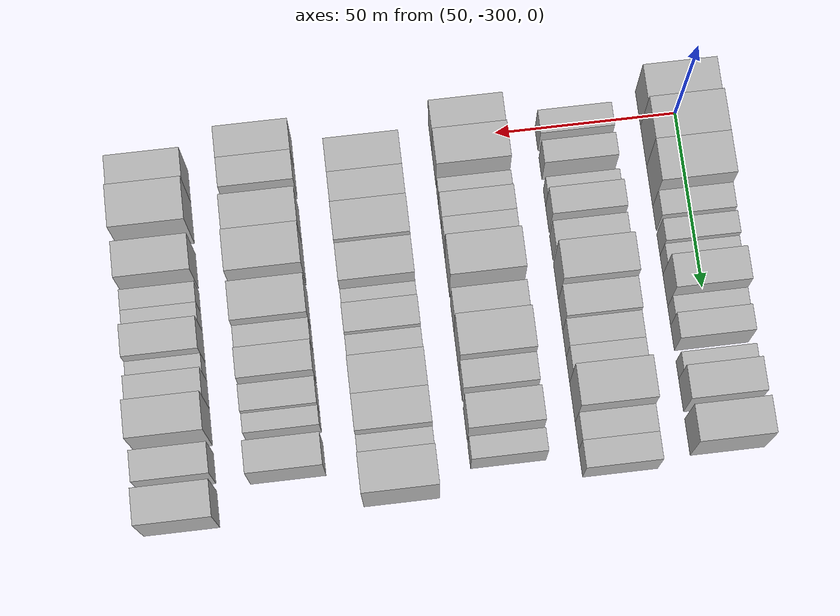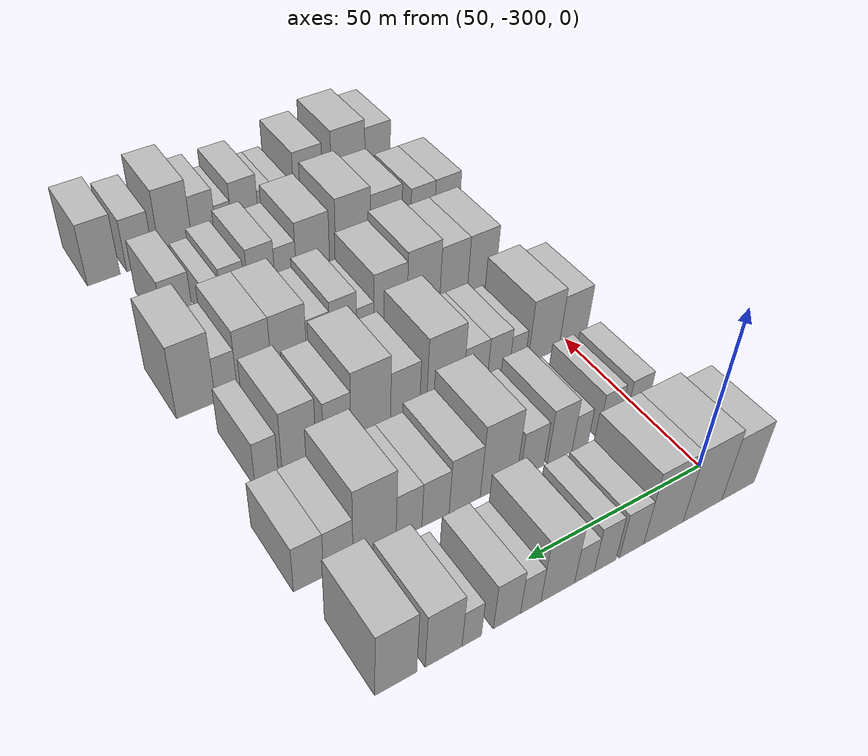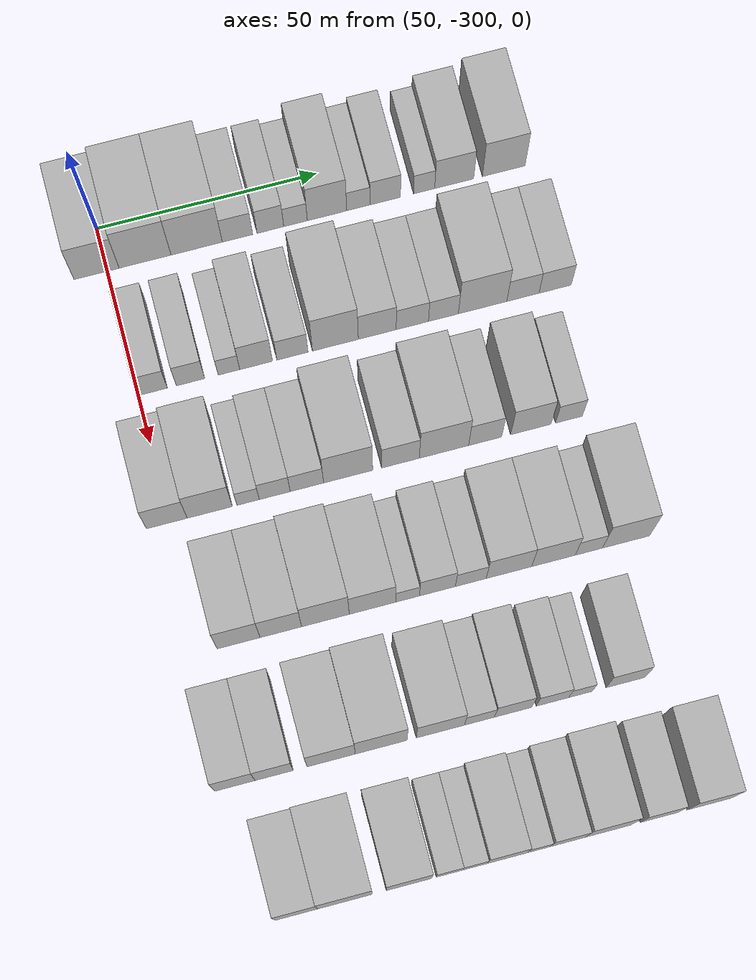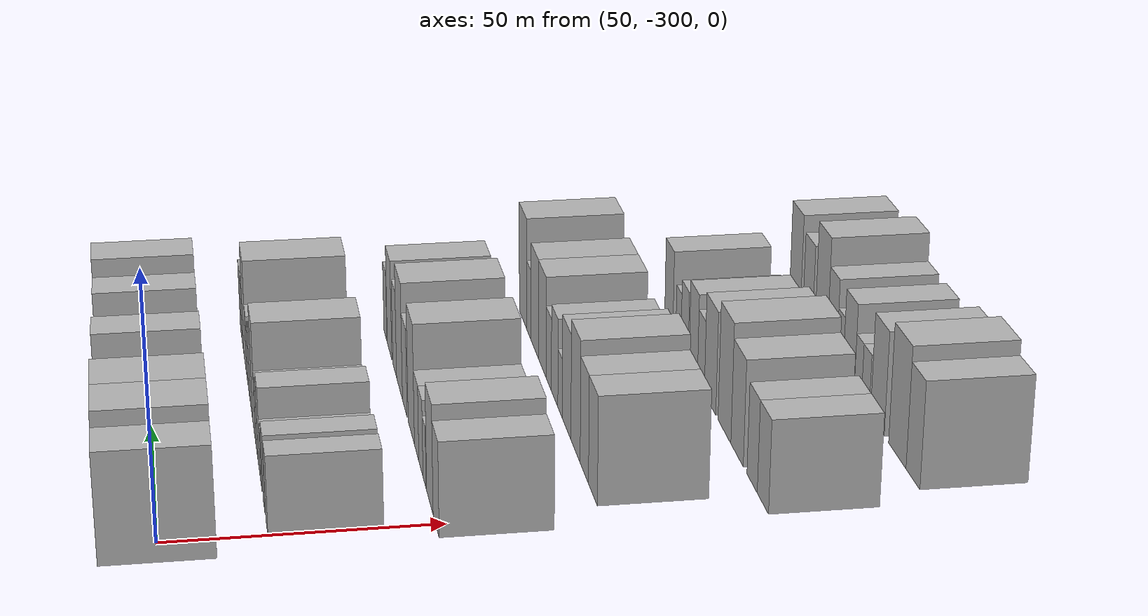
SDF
<sdf version="1.6">
 <world name="default">
  <model name="building_23">
   <static>1</static>
   <pose>50.0000 -302.3935 0 0.000000 0.000000 0.000000</pose>
   <link name="link">
    <pose>0 0 10.50 0 0 0</pose>
    <collision name="collision"><geometry><box><size>20.0000 10.1690 21.0000</size></box></geometry></collision>
    <visual name="visual">
     <cast_shadows>0</cast_shadows>
     <geometry><box><size>20.0000 10.1690 21.0000</size></box></geometry>
     <material>
      <script>
       <uri>model://HANNAS_wall/materials/scripts</uri>
       <uri>model://HANNAS_wall/materials/textures</uri>
       <name>vrc/HANNAS_wall</name>
      </script>
     </material>
    </visual>
   </link>
  </model>
  <model name="building_24">
   <static>1</static>
   <pose>50.0000 -291.4551 0 0.000000 0.000000 0.000000</pose>
   <link name="link">
    <pose>0 0 12.00 0 0 0</pose>
    <collision name="collision"><geometry><box><size>20.0000 11.7078 24.0000</size></box></geometry></collision>
    <visual name="visual">
     <cast_shadows>0</cast_shadows>
     <geometry><box><size>20.0000 11.7078 24.0000</size></box></geometry>
     <material>
      <script>
       <uri>model://HANNAS_wall/materials/scripts</uri>
       <uri>model://HANNAS_wall/materials/textures</uri>
       <name>vrc/HANNAS_wall</name>
      </script>
     </material>
    </visual>
   </link>
  </model>
  <model name="building_25">
   <static>1</static>
   <pose>50.0000 -279.8147 0 0.000000 0.000000 0.000000</pose>
   <link name="link">
    <pose>0 0 12.00 0 0 0</pose>
    <collision name="collision"><geometry><box><size>20.0000 11.5730 24.0000</size></box></geometry></collision>
    <visual name="visual">
     <cast_shadows>0</cast_shadows>
     <geometry><box><size>20.0000 11.5730 24.0000</size></box></geometry>
     <material>
      <script>
       <uri>model://HANNAS_wall/materials/scripts</uri>
       <uri>model://HANNAS_wall/materials/textures</uri>
       <name>vrc/HANNAS_wall</name>
      </script>
     </material>
    </visual>
   </link>
  </model>
  <model name="building_26">
   <static>1</static>
   <pose>50.0000 -270.5870 0 0.000000 0.000000 0.000000</pose>
   <link name="link">
    <pose>0 0 7.50 0 0 0</pose>
    <collision name="collision"><geometry><box><size>20.0000 6.8825 15.0000</size></box></geometry></collision>
    <visual name="visual">
     <cast_shadows>0</cast_shadows>
     <geometry><box><size>20.0000 6.8825 15.0000</size></box></geometry>
     <material>
      <script>
       <uri>model://HANNAS_wall/materials/scripts</uri>
       <uri>model://HANNAS_wall/materials/textures</uri>
       <name>vrc/HANNAS_wall</name>
      </script>
     </material>
    </visual>
   </link>
  </model>
  <model name="building_27">
   <static>1</static>
   <pose>50.0000 -263.1176 0 0.000000 0.000000 0.000000</pose>
   <link name="link">
    <pose>0 0 7.50 0 0 0</pose>
    <collision name="collision"><geometry><box><size>20.0000 6.0564 15.0000</size></box></geometry></collision>
    <visual name="visual">
     <cast_shadows>0</cast_shadows>
     <geometry><box><size>20.0000 6.0564 15.0000</size></box></geometry>
     <material>
      <script>
       <uri>model://HANNAS_wall/materials/scripts</uri>
       <uri>model://HANNAS_wall/materials/textures</uri>
       <name>vrc/HANNAS_wall</name>
      </script>
     </material>
    </visual>
   </link>
  </model>
  <model name="building_28">
   <static>1</static>
   <pose>50.0000 -257.4075 0 0.000000 0.000000 0.000000</pose>
   <link name="link">
    <pose>0 0 6.00 0 0 0</pose>
    <collision name="collision"><geometry><box><size>20.0000 5.3637 12.0000</size></box></geometry></collision>
    <visual name="visual">
     <cast_shadows>0</cast_shadows>
     <geometry><box><size>20.0000 5.3637 12.0000</size></box></geometry>
     <material>
      <script>
       <uri>model://HANNAS_wall/materials/scripts</uri>
       <uri>model://HANNAS_wall/materials/textures</uri>
       <name>vrc/HANNAS_wall</name>
      </script>
     </material>
    </visual>
   </link>
  </model>
  <model name="building_29">
   <static>1</static>
   <pose>50.0000 -250.2518 0 0.000000 0.000000 0.000000</pose>
   <link name="link">
    <pose>0 0 10.50 0 0 0</pose>
    <collision name="collision"><geometry><box><size>20.0000 8.9477 21.0000</size></box></geometry></collision>
    <visual name="visual">
     <cast_shadows>0</cast_shadows>
     <geometry><box><size>20.0000 8.9477 21.0000</size></box></geometry>
     <material>
      <script>
       <uri>model://HANNAS_wall/materials/scripts</uri>
       <uri>model://HANNAS_wall/materials/textures</uri>
       <name>vrc/HANNAS_wall</name>
      </script>
     </material>
    </visual>
   </link>
  </model>
  <model name="building_30">
   <static>1</static>
   <pose>50.0000 -243.1245 0 0.000000 0.000000 0.000000</pose>
   <link name="link">
    <pose>0 0 6.00 0 0 0</pose>
    <collision name="collision"><geometry><box><size>20.0000 5.3070 12.0000</size></box></geometry></collision>
    <visual name="visual">
     <cast_shadows>0</cast_shadows>
     <geometry><box><size>20.0000 5.3070 12.0000</size></box></geometry>
     <material>
      <script>
       <uri>model://HANNAS_wall/materials/scripts</uri>
       <uri>model://HANNAS_wall/materials/textures</uri>
       <name>vrc/HANNAS_wall</name>
      </script>
     </material>
    </visual>
   </link>
  </model>
  <model name="building_31">
   <static>1</static>
   <pose>50.0000 -237.0091 0 0.000000 0.000000 0.000000</pose>
   <link name="link">
    <pose>0 0 7.50 0 0 0</pose>
    <collision name="collision"><geometry><box><size>20.0000 6.9237 15.0000</size></box></geometry></collision>
    <visual name="visual">
     <cast_shadows>0</cast_shadows>
     <geometry><box><size>20.0000 6.9237 15.0000</size></box></geometry>
     <material>
      <script>
       <uri>model://HANNAS_wall/materials/scripts</uri>
       <uri>model://HANNAS_wall/materials/textures</uri>
       <name>vrc/HANNAS_wall</name>
      </script>
     </material>
    </visual>
   </link>
  </model>
  <model name="building_32">
   <static>1</static>
   <pose>50.0000 -228.1364 0 0.000000 0.000000 0.000000</pose>
   <link name="link">
    <pose>0 0 6.00 0 0 0</pose>
    <collision name="collision"><geometry><box><size>20.0000 4.8216 12.0000</size></box></geometry></collision>
    <visual name="visual">
     <cast_shadows>0</cast_shadows>
     <geometry><box><size>20.0000 4.8216 12.0000</size></box></geometry>
     <material>
      <script>
       <uri>model://HANNAS_wall/materials/scripts</uri>
       <uri>model://HANNAS_wall/materials/textures</uri>
       <name>vrc/HANNAS_wall</name>
      </script>
     </material>
    </visual>
   </link>
  </model>
  <model name="building_33">
   <static>1</static>
   <pose>50.0000 -221.2678 0 0.000000 0.000000 0.000000</pose>
   <link name="link">
    <pose>0 0 9.00 0 0 0</pose>
    <collision name="collision"><geometry><box><size>20.0000 8.9158 18.0000</size></box></geometry></collision>
    <visual name="visual">
     <cast_shadows>0</cast_shadows>
     <geometry><box><size>20.0000 8.9158 18.0000</size></box></geometry>
     <material>
      <script>
       <uri>model://HANNAS_wall/materials/scripts</uri>
       <uri>model://HANNAS_wall/materials/textures</uri>
       <name>vrc/HANNAS_wall</name>
      </script>
     </material>
    </visual>
   </link>
  </model>
  <model name="building_34">
   <static>1</static>
   <pose>50.0000 -209.9153 0 0.000000 0.000000 0.000000</pose>
   <link name="link">
    <pose>0 0 10.50 0 0 0</pose>
    <collision name="collision"><geometry><box><size>20.0000 9.7893 21.0000</size></box></geometry></collision>
    <visual name="visual">
     <cast_shadows>0</cast_shadows>
     <geometry><box><size>20.0000 9.7893 21.0000</size></box></geometry>
     <material>
      <script>
       <uri>model://HANNAS_wall/materials/scripts</uri>
       <uri>model://HANNAS_wall/materials/textures</uri>
       <name>vrc/HANNAS_wall</name>
      </script>
     </material>
    </visual>
   </link>
  </model>
  <model name="building_140">
   <static>1</static>
   <pose>79.0000 -296.7971 0 0.000000 0.000000 0.000000</pose>
   <link name="link">
    <pose>0 0 7.50 0 0 0</pose>
    <collision name="collision"><geometry><box><size>20.0000 6.5523 15.0000</size></box></geometry></collision>
    <visual name="visual">
     <cast_shadows>0</cast_shadows>
     <geometry><box><size>20.0000 6.5523 15.0000</size></box></geometry>
     <material>
      <script>
       <uri>model://HANNAS_wall/materials/scripts</uri>
       <uri>model://HANNAS_wall/materials/textures</uri>
       <name>vrc/HANNAS_wall</name>
      </script>
     </material>
    </visual>
   </link>
  </model>
  <model name="building_141">
   <static>1</static>
   <pose>79.0000 -288.3444 0 0.000000 0.000000 0.000000</pose>
   <link name="link">
    <pose>0 0 7.50 0 0 0</pose>
    <collision name="collision"><geometry><box><size>20.0000 6.3531 15.0000</size></box></geometry></collision>
    <visual name="visual">
     <cast_shadows>0</cast_shadows>
     <geometry><box><size>20.0000 6.3531 15.0000</size></box></geometry>
     <material>
      <script>
       <uri>model://HANNAS_wall/materials/scripts</uri>
       <uri>model://HANNAS_wall/materials/textures</uri>
       <name>vrc/HANNAS_wall</name>
      </script>
     </material>
    </visual>
   </link>
  </model>
  <model name="building_142">
   <static>1</static>
   <pose>79.0000 -279.7513 0 0.000000 0.000000 0.000000</pose>
   <link name="link">
    <pose>0 0 6.00 0 0 0</pose>
    <collision name="collision"><geometry><box><size>20.0000 4.8330 12.0000</size></box></geometry></collision>
    <visual name="visual">
     <cast_shadows>0</cast_shadows>
     <geometry><box><size>20.0000 4.8330 12.0000</size></box></geometry>
     <material>
      <script>
       <uri>model://HANNAS_wall/materials/scripts</uri>
       <uri>model://HANNAS_wall/materials/textures</uri>
       <name>vrc/HANNAS_wall</name>
      </script>
     </material>
    </visual>
   </link>
  </model>
  <model name="building_143">
   <static>1</static>
   <pose>79.0000 -273.6751 0 0.000000 0.000000 0.000000</pose>
   <link name="link">
    <pose>0 0 9.00 0 0 0</pose>
    <collision name="collision"><geometry><box><size>20.0000 7.3194 18.0000</size></box></geometry></collision>
    <visual name="visual">
     <cast_shadows>0</cast_shadows>
     <geometry><box><size>20.0000 7.3194 18.0000</size></box></geometry>
     <material>
      <script>
       <uri>model://HANNAS_wall/materials/scripts</uri>
       <uri>model://HANNAS_wall/materials/textures</uri>
       <name>vrc/HANNAS_wall</name>
      </script>
     </material>
    </visual>
   </link>
  </model>
  <model name="building_144">
   <static>1</static>
   <pose>79.0000 -265.5273 0 0.000000 0.000000 0.000000</pose>
   <link name="link">
    <pose>0 0 7.50 0 0 0</pose>
    <collision name="collision"><geometry><box><size>20.0000 6.9761 15.0000</size></box></geometry></collision>
    <visual name="visual">
     <cast_shadows>0</cast_shadows>
     <geometry><box><size>20.0000 6.9761 15.0000</size></box></geometry>
     <material>
      <script>
       <uri>model://HANNAS_wall/materials/scripts</uri>
       <uri>model://HANNAS_wall/materials/textures</uri>
       <name>vrc/HANNAS_wall</name>
      </script>
     </material>
    </visual>
   </link>
  </model>
  <model name="building_145">
   <static>1</static>
   <pose>79.0000 -255.8874 0 0.000000 0.000000 0.000000</pose>
   <link name="link">
    <pose>0 0 12.00 0 0 0</pose>
    <collision name="collision"><geometry><box><size>20.0000 10.3038 24.0000</size></box></geometry></collision>
    <visual name="visual">
     <cast_shadows>0</cast_shadows>
     <geometry><box><size>20.0000 10.3038 24.0000</size></box></geometry>
     <material>
      <script>
       <uri>model://HANNAS_wall/materials/scripts</uri>
       <uri>model://HANNAS_wall/materials/textures</uri>
       <name>vrc/HANNAS_wall</name>
      </script>
     </material>
    </visual>
   </link>
  </model>
  <model name="building_146">
   <static>1</static>
   <pose>79.0000 -246.4795 0 0.000000 0.000000 0.000000</pose>
   <link name="link">
    <pose>0 0 9.00 0 0 0</pose>
    <collision name="collision"><geometry><box><size>20.0000 8.5119 18.0000</size></box></geometry></collision>
    <visual name="visual">
     <cast_shadows>0</cast_shadows>
     <geometry><box><size>20.0000 8.5119 18.0000</size></box></geometry>
     <material>
      <script>
       <uri>model://HANNAS_wall/materials/scripts</uri>
       <uri>model://HANNAS_wall/materials/textures</uri>
       <name>vrc/HANNAS_wall</name>
      </script>
     </material>
    </visual>
   </link>
  </model>
  <model name="building_147">
   <static>1</static>
   <pose>79.0000 -238.5773 0 0.000000 0.000000 0.000000</pose>
   <link name="link">
    <pose>0 0 7.50 0 0 0</pose>
    <collision name="collision"><geometry><box><size>20.0000 7.2926 15.0000</size></box></geometry></collision>
    <visual name="visual">
     <cast_shadows>0</cast_shadows>
     <geometry><box><size>20.0000 7.2926 15.0000</size></box></geometry>
     <material>
      <script>
       <uri>model://HANNAS_wall/materials/scripts</uri>
       <uri>model://HANNAS_wall/materials/textures</uri>
       <name>vrc/HANNAS_wall</name>
      </script>
     </material>
    </visual>
   </link>
  </model>
  <model name="building_148">
   <static>1</static>
   <pose>79.0000 -231.5501 0 0.000000 0.000000 0.000000</pose>
   <link name="link">
    <pose>0 0 7.50 0 0 0</pose>
    <collision name="collision"><geometry><box><size>20.0000 6.7620 15.0000</size></box></geometry></collision>
    <visual name="visual">
     <cast_shadows>0</cast_shadows>
     <geometry><box><size>20.0000 6.7620 15.0000</size></box></geometry>
     <material>
      <script>
       <uri>model://HANNAS_wall/materials/scripts</uri>
       <uri>model://HANNAS_wall/materials/textures</uri>
       <name>vrc/HANNAS_wall</name>
      </script>
     </material>
    </visual>
   </link>
  </model>
  <model name="building_149">
   <static>1</static>
   <pose>79.0000 -222.6835 0 0.000000 0.000000 0.000000</pose>
   <link name="link">
    <pose>0 0 12.00 0 0 0</pose>
    <collision name="collision"><geometry><box><size>20.0000 10.9712 24.0000</size></box></geometry></collision>
    <visual name="visual">
     <cast_shadows>0</cast_shadows>
     <geometry><box><size>20.0000 10.9712 24.0000</size></box></geometry>
     <material>
      <script>
       <uri>model://HANNAS_wall/materials/scripts</uri>
       <uri>model://HANNAS_wall/materials/textures</uri>
       <name>vrc/HANNAS_wall</name>
      </script>
     </material>
    </visual>
   </link>
  </model>
  <model name="building_150">
   <static>1</static>
   <pose>79.0000 -213.5568 0 0.000000 0.000000 0.000000</pose>
   <link name="link">
    <pose>0 0 7.50 0 0 0</pose>
    <collision name="collision"><geometry><box><size>20.0000 7.2820 15.0000</size></box></geometry></collision>
    <visual name="visual">
     <cast_shadows>0</cast_shadows>
     <geometry><box><size>20.0000 7.2820 15.0000</size></box></geometry>
     <material>
      <script>
       <uri>model://HANNAS_wall/materials/scripts</uri>
       <uri>model://HANNAS_wall/materials/textures</uri>
       <name>vrc/HANNAS_wall</name>
      </script>
     </material>
    </visual>
   </link>
  </model>
  <model name="building_151">
   <static>1</static>
   <pose>79.0000 -206.2512 0 0.000000 0.000000 0.000000</pose>
   <link name="link">
    <pose>0 0 7.50 0 0 0</pose>
    <collision name="collision"><geometry><box><size>20.0000 7.3293 15.0000</size></box></geometry></collision>
    <visual name="visual">
     <cast_shadows>0</cast_shadows>
     <geometry><box><size>20.0000 7.3293 15.0000</size></box></geometry>
     <material>
      <script>
       <uri>model://HANNAS_wall/materials/scripts</uri>
       <uri>model://HANNAS_wall/materials/textures</uri>
       <name>vrc/HANNAS_wall</name>
      </script>
     </material>
    </visual>
   </link>
  </model>
  <model name="building_253">
   <static>1</static>
   <pose>108.0000 -300.7276 0 0.000000 0.000000 0.000000</pose>
   <link name="link">
    <pose>0 0 9.00 0 0 0</pose>
    <collision name="collision"><geometry><box><size>20.0000 8.9836 18.0000</size></box></geometry></collision>
    <visual name="visual">
     <cast_shadows>0</cast_shadows>
     <geometry><box><size>20.0000 8.9836 18.0000</size></box></geometry>
     <material>
      <script>
       <uri>model://HANNAS_wall/materials/scripts</uri>
       <uri>model://HANNAS_wall/materials/textures</uri>
       <name>vrc/HANNAS_wall</name>
      </script>
     </material>
    </visual>
   </link>
  </model>
  <model name="building_254">
   <static>1</static>
   <pose>108.0000 -291.2330 0 0.000000 0.000000 0.000000</pose>
   <link name="link">
    <pose>0 0 10.50 0 0 0</pose>
    <collision name="collision"><geometry><box><size>20.0000 10.0057 21.0000</size></box></geometry></collision>
    <visual name="visual">
     <cast_shadows>0</cast_shadows>
     <geometry><box><size>20.0000 10.0057 21.0000</size></box></geometry>
     <material>
      <script>
       <uri>model://HANNAS_wall/materials/scripts</uri>
       <uri>model://HANNAS_wall/materials/textures</uri>
       <name>vrc/HANNAS_wall</name>
      </script>
     </material>
    </visual>
   </link>
  </model>
  <model name="building_255">
   <static>1</static>
   <pose>108.0000 -282.7687 0 0.000000 0.000000 0.000000</pose>
   <link name="link">
    <pose>0 0 6.00 0 0 0</pose>
    <collision name="collision"><geometry><box><size>20.0000 4.9228 12.0000</size></box></geometry></collision>
    <visual name="visual">
     <cast_shadows>0</cast_shadows>
     <geometry><box><size>20.0000 4.9228 12.0000</size></box></geometry>
     <material>
      <script>
       <uri>model://HANNAS_wall/materials/scripts</uri>
       <uri>model://HANNAS_wall/materials/textures</uri>
       <name>vrc/HANNAS_wall</name>
      </script>
     </material>
    </visual>
   </link>
  </model>
  <model name="building_256">
   <static>1</static>
   <pose>108.0000 -276.8746 0 0.000000 0.000000 0.000000</pose>
   <link name="link">
    <pose>0 0 7.50 0 0 0</pose>
    <collision name="collision"><geometry><box><size>20.0000 6.8655 15.0000</size></box></geometry></collision>
    <visual name="visual">
     <cast_shadows>0</cast_shadows>
     <geometry><box><size>20.0000 6.8655 15.0000</size></box></geometry>
     <material>
      <script>
       <uri>model://HANNAS_wall/materials/scripts</uri>
       <uri>model://HANNAS_wall/materials/textures</uri>
       <name>vrc/HANNAS_wall</name>
      </script>
     </material>
    </visual>
   </link>
  </model>
  <model name="building_257">
   <static>1</static>
   <pose>108.0000 -269.7423 0 0.000000 0.000000 0.000000</pose>
   <link name="link">
    <pose>0 0 7.50 0 0 0</pose>
    <collision name="collision"><geometry><box><size>20.0000 7.3991 15.0000</size></box></geometry></collision>
    <visual name="visual">
     <cast_shadows>0</cast_shadows>
     <geometry><box><size>20.0000 7.3991 15.0000</size></box></geometry>
     <material>
      <script>
       <uri>model://HANNAS_wall/materials/scripts</uri>
       <uri>model://HANNAS_wall/materials/textures</uri>
       <name>vrc/HANNAS_wall</name>
      </script>
     </material>
    </visual>
   </link>
  </model>
  <model name="building_258">
   <static>1</static>
   <pose>108.0000 -260.5923 0 0.000000 0.000000 0.000000</pose>
   <link name="link">
    <pose>0 0 12.00 0 0 0</pose>
    <collision name="collision"><geometry><box><size>20.0000 10.9008 24.0000</size></box></geometry></collision>
    <visual name="visual">
     <cast_shadows>0</cast_shadows>
     <geometry><box><size>20.0000 10.9008 24.0000</size></box></geometry>
     <material>
      <script>
       <uri>model://HANNAS_wall/materials/scripts</uri>
       <uri>model://HANNAS_wall/materials/textures</uri>
       <name>vrc/HANNAS_wall</name>
      </script>
     </material>
    </visual>
   </link>
  </model>
  <model name="building_259">
   <static>1</static>
   <pose>108.0000 -248.9507 0 0.000000 0.000000 0.000000</pose>
   <link name="link">
    <pose>0 0 9.00 0 0 0</pose>
    <collision name="collision"><geometry><box><size>20.0000 8.3825 18.0000</size></box></geometry></collision>
    <visual name="visual">
     <cast_shadows>0</cast_shadows>
     <geometry><box><size>20.0000 8.3825 18.0000</size></box></geometry>
     <material>
      <script>
       <uri>model://HANNAS_wall/materials/scripts</uri>
       <uri>model://HANNAS_wall/materials/textures</uri>
       <name>vrc/HANNAS_wall</name>
      </script>
     </material>
    </visual>
   </link>
  </model>
  <model name="building_260">
   <static>1</static>
   <pose>108.0000 -239.2527 0 0.000000 0.000000 0.000000</pose>
   <link name="link">
    <pose>0 0 12.00 0 0 0</pose>
    <collision name="collision"><geometry><box><size>20.0000 11.0135 24.0000</size></box></geometry></collision>
    <visual name="visual">
     <cast_shadows>0</cast_shadows>
     <geometry><box><size>20.0000 11.0135 24.0000</size></box></geometry>
     <material>
      <script>
       <uri>model://HANNAS_wall/materials/scripts</uri>
       <uri>model://HANNAS_wall/materials/textures</uri>
       <name>vrc/HANNAS_wall</name>
      </script>
     </material>
    </visual>
   </link>
  </model>
  <model name="building_261">
   <static>1</static>
   <pose>108.0000 -230.0489 0 0.000000 0.000000 0.000000</pose>
   <link name="link">
    <pose>0 0 9.00 0 0 0</pose>
    <collision name="collision"><geometry><box><size>20.0000 7.3941 18.0000</size></box></geometry></collision>
    <visual name="visual">
     <cast_shadows>0</cast_shadows>
     <geometry><box><size>20.0000 7.3941 18.0000</size></box></geometry>
     <material>
      <script>
       <uri>model://HANNAS_wall/materials/scripts</uri>
       <uri>model://HANNAS_wall/materials/textures</uri>
       <name>vrc/HANNAS_wall</name>
      </script>
     </material>
    </visual>
   </link>
  </model>
  <model name="building_262">
   <static>1</static>
   <pose>108.0000 -219.8228 0 0.000000 0.000000 0.000000</pose>
   <link name="link">
    <pose>0 0 10.50 0 0 0</pose>
    <collision name="collision"><geometry><box><size>20.0000 9.0582 21.0000</size></box></geometry></collision>
    <visual name="visual">
     <cast_shadows>0</cast_shadows>
     <geometry><box><size>20.0000 9.0582 21.0000</size></box></geometry>
     <material>
      <script>
       <uri>model://HANNAS_wall/materials/scripts</uri>
       <uri>model://HANNAS_wall/materials/textures</uri>
       <name>vrc/HANNAS_wall</name>
      </script>
     </material>
    </visual>
   </link>
  </model>
  <model name="building_263">
   <static>1</static>
   <pose>108.0000 -211.2762 0 0.000000 0.000000 0.000000</pose>
   <link name="link">
    <pose>0 0 7.50 0 0 0</pose>
    <collision name="collision"><geometry><box><size>20.0000 6.0351 15.0000</size></box></geometry></collision>
    <visual name="visual">
     <cast_shadows>0</cast_shadows>
     <geometry><box><size>20.0000 6.0351 15.0000</size></box></geometry>
     <material>
      <script>
       <uri>model://HANNAS_wall/materials/scripts</uri>
       <uri>model://HANNAS_wall/materials/textures</uri>
       <name>vrc/HANNAS_wall</name>
      </script>
     </material>
    </visual>
   </link>
  </model>
  <model name="building_364">
   <static>1</static>
   <pose>137.0000 -292.1297 0 0.000000 0.000000 0.000000</pose>
   <link name="link">
    <pose>0 0 10.50 0 0 0</pose>
    <collision name="collision"><geometry><box><size>20.0000 9.3698 21.0000</size></box></geometry></collision>
    <visual name="visual">
     <cast_shadows>0</cast_shadows>
     <geometry><box><size>20.0000 9.3698 21.0000</size></box></geometry>
     <material>
      <script>
       <uri>model://HANNAS_wall/materials/scripts</uri>
       <uri>model://HANNAS_wall/materials/textures</uri>
       <name>vrc/HANNAS_wall</name>
      </script>
     </material>
    </visual>
   </link>
  </model>
  <model name="building_365">
   <static>1</static>
   <pose>137.0000 -282.8979 0 0.000000 0.000000 0.000000</pose>
   <link name="link">
    <pose>0 0 10.50 0 0 0</pose>
    <collision name="collision"><geometry><box><size>20.0000 9.0937 21.0000</size></box></geometry></collision>
    <visual name="visual">
     <cast_shadows>0</cast_shadows>
     <geometry><box><size>20.0000 9.0937 21.0000</size></box></geometry>
     <material>
      <script>
       <uri>model://HANNAS_wall/materials/scripts</uri>
       <uri>model://HANNAS_wall/materials/textures</uri>
       <name>vrc/HANNAS_wall</name>
      </script>
     </material>
    </visual>
   </link>
  </model>
  <model name="building_366">
   <static>1</static>
   <pose>137.0000 -273.1325 0 0.000000 0.000000 0.000000</pose>
   <link name="link">
    <pose>0 0 12.00 0 0 0</pose>
    <collision name="collision"><geometry><box><size>20.0000 10.4372 24.0000</size></box></geometry></collision>
    <visual name="visual">
     <cast_shadows>0</cast_shadows>
     <geometry><box><size>20.0000 10.4372 24.0000</size></box></geometry>
     <material>
      <script>
       <uri>model://HANNAS_wall/materials/scripts</uri>
       <uri>model://HANNAS_wall/materials/textures</uri>
       <name>vrc/HANNAS_wall</name>
      </script>
     </material>
    </visual>
   </link>
  </model>
  <model name="building_367">
   <static>1</static>
   <pose>137.0000 -262.8202 0 0.000000 0.000000 0.000000</pose>
   <link name="link">
    <pose>0 0 10.50 0 0 0</pose>
    <collision name="collision"><geometry><box><size>20.0000 10.1873 21.0000</size></box></geometry></collision>
    <visual name="visual">
     <cast_shadows>0</cast_shadows>
     <geometry><box><size>20.0000 10.1873 21.0000</size></box></geometry>
     <material>
      <script>
       <uri>model://HANNAS_wall/materials/scripts</uri>
       <uri>model://HANNAS_wall/materials/textures</uri>
       <name>vrc/HANNAS_wall</name>
      </script>
     </material>
    </visual>
   </link>
  </model>
  <model name="building_368">
   <static>1</static>
   <pose>137.0000 -255.1087 0 0.000000 0.000000 0.000000</pose>
   <link name="link">
    <pose>0 0 6.00 0 0 0</pose>
    <collision name="collision"><geometry><box><size>20.0000 5.2357 12.0000</size></box></geometry></collision>
    <visual name="visual">
     <cast_shadows>0</cast_shadows>
     <geometry><box><size>20.0000 5.2357 12.0000</size></box></geometry>
     <material>
      <script>
       <uri>model://HANNAS_wall/materials/scripts</uri>
       <uri>model://HANNAS_wall/materials/textures</uri>
       <name>vrc/HANNAS_wall</name>
      </script>
     </material>
    </visual>
   </link>
  </model>
  <model name="building_369">
   <static>1</static>
   <pose>137.0000 -248.5277 0 0.000000 0.000000 0.000000</pose>
   <link name="link">
    <pose>0 0 9.00 0 0 0</pose>
    <collision name="collision"><geometry><box><size>20.0000 7.9263 18.0000</size></box></geometry></collision>
    <visual name="visual">
     <cast_shadows>0</cast_shadows>
     <geometry><box><size>20.0000 7.9263 18.0000</size></box></geometry>
     <material>
      <script>
       <uri>model://HANNAS_wall/materials/scripts</uri>
       <uri>model://HANNAS_wall/materials/textures</uri>
       <name>vrc/HANNAS_wall</name>
      </script>
     </material>
    </visual>
   </link>
  </model>
  <model name="building_370">
   <static>1</static>
   <pose>137.0000 -241.1570 0 0.000000 0.000000 0.000000</pose>
   <link name="link">
    <pose>0 0 7.50 0 0 0</pose>
    <collision name="collision"><geometry><box><size>20.0000 6.8150 15.0000</size></box></geometry></collision>
    <visual name="visual">
     <cast_shadows>0</cast_shadows>
     <geometry><box><size>20.0000 6.8150 15.0000</size></box></geometry>
     <material>
      <script>
       <uri>model://HANNAS_wall/materials/scripts</uri>
       <uri>model://HANNAS_wall/materials/textures</uri>
       <name>vrc/HANNAS_wall</name>
      </script>
     </material>
    </visual>
   </link>
  </model>
  <model name="building_371">
   <static>1</static>
   <pose>137.0000 -232.7211 0 0.000000 0.000000 0.000000</pose>
   <link name="link">
    <pose>0 0 10.50 0 0 0</pose>
    <collision name="collision"><geometry><box><size>20.0000 10.0568 21.0000</size></box></geometry></collision>
    <visual name="visual">
     <cast_shadows>0</cast_shadows>
     <geometry><box><size>20.0000 10.0568 21.0000</size></box></geometry>
     <material>
      <script>
       <uri>model://HANNAS_wall/materials/scripts</uri>
       <uri>model://HANNAS_wall/materials/textures</uri>
       <name>vrc/HANNAS_wall</name>
      </script>
     </material>
    </visual>
   </link>
  </model>
  <model name="building_372">
   <static>1</static>
   <pose>137.0000 -222.8588 0 0.000000 0.000000 0.000000</pose>
   <link name="link">
    <pose>0 0 10.50 0 0 0</pose>
    <collision name="collision"><geometry><box><size>20.0000 9.6679 21.0000</size></box></geometry></collision>
    <visual name="visual">
     <cast_shadows>0</cast_shadows>
     <geometry><box><size>20.0000 9.6679 21.0000</size></box></geometry>
     <material>
      <script>
       <uri>model://HANNAS_wall/materials/scripts</uri>
       <uri>model://HANNAS_wall/materials/textures</uri>
       <name>vrc/HANNAS_wall</name>
      </script>
     </material>
    </visual>
   </link>
  </model>
  <model name="building_373">
   <static>1</static>
   <pose>137.0000 -214.9940 0 0.000000 0.000000 0.000000</pose>
   <link name="link">
    <pose>0 0 7.50 0 0 0</pose>
    <collision name="collision"><geometry><box><size>20.0000 6.0616 15.0000</size></box></geometry></collision>
    <visual name="visual">
     <cast_shadows>0</cast_shadows>
     <geometry><box><size>20.0000 6.0616 15.0000</size></box></geometry>
     <material>
      <script>
       <uri>model://HANNAS_wall/materials/scripts</uri>
       <uri>model://HANNAS_wall/materials/textures</uri>
       <name>vrc/HANNAS_wall</name>
      </script>
     </material>
    </visual>
   </link>
  </model>
  <model name="building_374">
   <static>1</static>
   <pose>137.0000 -206.7144 0 0.000000 0.000000 0.000000</pose>
   <link name="link">
    <pose>0 0 12.00 0 0 0</pose>
    <collision name="collision"><geometry><box><size>20.0000 10.4976 24.0000</size></box></geometry></collision>
    <visual name="visual">
     <cast_shadows>0</cast_shadows>
     <geometry><box><size>20.0000 10.4976 24.0000</size></box></geometry>
     <material>
      <script>
       <uri>model://HANNAS_wall/materials/scripts</uri>
       <uri>model://HANNAS_wall/materials/textures</uri>
       <name>vrc/HANNAS_wall</name>
      </script>
     </material>
    </visual>
   </link>
  </model>
  <model name="building_474">
   <static>1</static>
   <pose>166.0000 -300.2264 0 0.000000 0.000000 0.000000</pose>
   <link name="link">
    <pose>0 0 9.00 0 0 0</pose>
    <collision name="collision"><geometry><box><size>20.0000 8.7417 18.0000</size></box></geometry></collision>
    <visual name="visual">
     <cast_shadows>0</cast_shadows>
     <geometry><box><size>20.0000 8.7417 18.0000</size></box></geometry>
     <material>
      <script>
       <uri>model://HANNAS_wall/materials/scripts</uri>
       <uri>model://HANNAS_wall/materials/textures</uri>
       <name>vrc/HANNAS_wall</name>
      </script>
     </material>
    </visual>
   </link>
  </model>
  <model name="building_475">
   <static>1</static>
   <pose>166.0000 -291.7313 0 0.000000 0.000000 0.000000</pose>
   <link name="link">
    <pose>0 0 9.00 0 0 0</pose>
    <collision name="collision"><geometry><box><size>20.0000 8.2485 18.0000</size></box></geometry></collision>
    <visual name="visual">
     <cast_shadows>0</cast_shadows>
     <geometry><box><size>20.0000 8.2485 18.0000</size></box></geometry>
     <material>
      <script>
       <uri>model://HANNAS_wall/materials/scripts</uri>
       <uri>model://HANNAS_wall/materials/textures</uri>
       <name>vrc/HANNAS_wall</name>
      </script>
     </material>
    </visual>
   </link>
  </model>
  <model name="building_476">
   <static>1</static>
   <pose>166.0000 -279.3903 0 0.000000 0.000000 0.000000</pose>
   <link name="link">
    <pose>0 0 10.50 0 0 0</pose>
    <collision name="collision"><geometry><box><size>20.0000 10.4335 21.0000</size></box></geometry></collision>
    <visual name="visual">
     <cast_shadows>0</cast_shadows>
     <geometry><box><size>20.0000 10.4335 21.0000</size></box></geometry>
     <material>
      <script>
       <uri>model://HANNAS_wall/materials/scripts</uri>
       <uri>model://HANNAS_wall/materials/textures</uri>
       <name>vrc/HANNAS_wall</name>
      </script>
     </material>
    </visual>
   </link>
  </model>
  <model name="building_477">
   <static>1</static>
   <pose>166.0000 -268.5571 0 0.000000 0.000000 0.000000</pose>
   <link name="link">
    <pose>0 0 12.00 0 0 0</pose>
    <collision name="collision"><geometry><box><size>20.0000 11.2327 24.0000</size></box></geometry></collision>
    <visual name="visual">
     <cast_shadows>0</cast_shadows>
     <geometry><box><size>20.0000 11.2327 24.0000</size></box></geometry>
     <material>
      <script>
       <uri>model://HANNAS_wall/materials/scripts</uri>
       <uri>model://HANNAS_wall/materials/textures</uri>
       <name>vrc/HANNAS_wall</name>
      </script>
     </material>
    </visual>
   </link>
  </model>
  <model name="building_478">
   <static>1</static>
   <pose>166.0000 -255.6925 0 0.000000 0.000000 0.000000</pose>
   <link name="link">
    <pose>0 0 10.50 0 0 0</pose>
    <collision name="collision"><geometry><box><size>20.0000 10.4965 21.0000</size></box></geometry></collision>
    <visual name="visual">
     <cast_shadows>0</cast_shadows>
     <geometry><box><size>20.0000 10.4965 21.0000</size></box></geometry>
     <material>
      <script>
       <uri>model://HANNAS_wall/materials/scripts</uri>
       <uri>model://HANNAS_wall/materials/textures</uri>
       <name>vrc/HANNAS_wall</name>
      </script>
     </material>
    </visual>
   </link>
  </model>
  <model name="building_479">
   <static>1</static>
   <pose>166.0000 -247.1740 0 0.000000 0.000000 0.000000</pose>
   <link name="link">
    <pose>0 0 7.50 0 0 0</pose>
    <collision name="collision"><geometry><box><size>20.0000 6.5405 15.0000</size></box></geometry></collision>
    <visual name="visual">
     <cast_shadows>0</cast_shadows>
     <geometry><box><size>20.0000 6.5405 15.0000</size></box></geometry>
     <material>
      <script>
       <uri>model://HANNAS_wall/materials/scripts</uri>
       <uri>model://HANNAS_wall/materials/textures</uri>
       <name>vrc/HANNAS_wall</name>
      </script>
     </material>
    </visual>
   </link>
  </model>
  <model name="building_480">
   <static>1</static>
   <pose>166.0000 -239.8265 0 0.000000 0.000000 0.000000</pose>
   <link name="link">
    <pose>0 0 9.00 0 0 0</pose>
    <collision name="collision"><geometry><box><size>20.0000 8.1545 18.0000</size></box></geometry></collision>
    <visual name="visual">
     <cast_shadows>0</cast_shadows>
     <geometry><box><size>20.0000 8.1545 18.0000</size></box></geometry>
     <material>
      <script>
       <uri>model://HANNAS_wall/materials/scripts</uri>
       <uri>model://HANNAS_wall/materials/textures</uri>
       <name>vrc/HANNAS_wall</name>
      </script>
     </material>
    </visual>
   </link>
  </model>
  <model name="building_481">
   <static>1</static>
   <pose>166.0000 -231.1820 0 0.000000 0.000000 0.000000</pose>
   <link name="link">
    <pose>0 0 7.50 0 0 0</pose>
    <collision name="collision"><geometry><box><size>20.0000 7.1346 15.0000</size></box></geometry></collision>
    <visual name="visual">
     <cast_shadows>0</cast_shadows>
     <geometry><box><size>20.0000 7.1346 15.0000</size></box></geometry>
     <material>
      <script>
       <uri>model://HANNAS_wall/materials/scripts</uri>
       <uri>model://HANNAS_wall/materials/textures</uri>
       <name>vrc/HANNAS_wall</name>
      </script>
     </material>
    </visual>
   </link>
  </model>
  <model name="building_482">
   <static>1</static>
   <pose>166.0000 -225.0197 0 0.000000 0.000000 0.000000</pose>
   <link name="link">
    <pose>0 0 6.00 0 0 0</pose>
    <collision name="collision"><geometry><box><size>20.0000 5.1900 12.0000</size></box></geometry></collision>
    <visual name="visual">
     <cast_shadows>0</cast_shadows>
     <geometry><box><size>20.0000 5.1900 12.0000</size></box></geometry>
     <material>
      <script>
       <uri>model://HANNAS_wall/materials/scripts</uri>
       <uri>model://HANNAS_wall/materials/textures</uri>
       <name>vrc/HANNAS_wall</name>
      </script>
     </material>
    </visual>
   </link>
  </model>
  <model name="building_483">
   <static>1</static>
   <pose>166.0000 -215.1399 0 0.000000 0.000000 0.000000</pose>
   <link name="link">
    <pose>0 0 9.00 0 0 0</pose>
    <collision name="collision"><geometry><box><size>20.0000 8.5696 18.0000</size></box></geometry></collision>
    <visual name="visual">
     <cast_shadows>0</cast_shadows>
     <geometry><box><size>20.0000 8.5696 18.0000</size></box></geometry>
     <material>
      <script>
       <uri>model://HANNAS_wall/materials/scripts</uri>
       <uri>model://HANNAS_wall/materials/textures</uri>
       <name>vrc/HANNAS_wall</name>
      </script>
     </material>
    </visual>
   </link>
  </model>
  <model name="building_588">
   <static>1</static>
   <pose>195.0000 -294.2707 0 0.000000 0.000000 0.000000</pose>
   <link name="link">
    <pose>0 0 10.50 0 0 0</pose>
    <collision name="collision"><geometry><box><size>20.0000 8.9759 21.0000</size></box></geometry></collision>
    <visual name="visual">
     <cast_shadows>0</cast_shadows>
     <geometry><box><size>20.0000 8.9759 21.0000</size></box></geometry>
     <material>
      <script>
       <uri>model://HANNAS_wall/materials/scripts</uri>
       <uri>model://HANNAS_wall/materials/textures</uri>
       <name>vrc/HANNAS_wall</name>
      </script>
     </material>
    </visual>
   </link>
  </model>
  <model name="building_589">
   <static>1</static>
   <pose>195.0000 -283.9469 0 0.000000 0.000000 0.000000</pose>
   <link name="link">
    <pose>0 0 12.00 0 0 0</pose>
    <collision name="collision"><geometry><box><size>20.0000 11.6717 24.0000</size></box></geometry></collision>
    <visual name="visual">
     <cast_shadows>0</cast_shadows>
     <geometry><box><size>20.0000 11.6717 24.0000</size></box></geometry>
     <material>
      <script>
       <uri>model://HANNAS_wall/materials/scripts</uri>
       <uri>model://HANNAS_wall/materials/textures</uri>
       <name>vrc/HANNAS_wall</name>
      </script>
     </material>
    </visual>
   </link>
  </model>
  <model name="building_590">
   <static>1</static>
   <pose>195.0000 -270.2416 0 0.000000 0.000000 0.000000</pose>
   <link name="link">
    <pose>0 0 10.50 0 0 0</pose>
    <collision name="collision"><geometry><box><size>20.0000 9.7390 21.0000</size></box></geometry></collision>
    <visual name="visual">
     <cast_shadows>0</cast_shadows>
     <geometry><box><size>20.0000 9.7390 21.0000</size></box></geometry>
     <material>
      <script>
       <uri>model://HANNAS_wall/materials/scripts</uri>
       <uri>model://HANNAS_wall/materials/textures</uri>
       <name>vrc/HANNAS_wall</name>
      </script>
     </material>
    </visual>
   </link>
  </model>
  <model name="building_591">
   <static>1</static>
   <pose>195.0000 -261.5553 0 0.000000 0.000000 0.000000</pose>
   <link name="link">
    <pose>0 0 6.00 0 0 0</pose>
    <collision name="collision"><geometry><box><size>20.0000 5.6334 12.0000</size></box></geometry></collision>
    <visual name="visual">
     <cast_shadows>0</cast_shadows>
     <geometry><box><size>20.0000 5.6334 12.0000</size></box></geometry>
     <material>
      <script>
       <uri>model://HANNAS_wall/materials/scripts</uri>
       <uri>model://HANNAS_wall/materials/textures</uri>
       <name>vrc/HANNAS_wall</name>
      </script>
     </material>
    </visual>
   </link>
  </model>
  <model name="building_592">
   <static>1</static>
   <pose>195.0000 -256.0969 0 0.000000 0.000000 0.000000</pose>
   <link name="link">
    <pose>0 0 6.00 0 0 0</pose>
    <collision name="collision"><geometry><box><size>20.0000 5.2834 12.0000</size></box></geometry></collision>
    <visual name="visual">
     <cast_shadows>0</cast_shadows>
     <geometry><box><size>20.0000 5.2834 12.0000</size></box></geometry>
     <material>
      <script>
       <uri>model://HANNAS_wall/materials/scripts</uri>
       <uri>model://HANNAS_wall/materials/textures</uri>
       <name>vrc/HANNAS_wall</name>
      </script>
     </material>
    </visual>
   </link>
  </model>
  <model name="building_593">
   <static>1</static>
   <pose>195.0000 -249.1523 0 0.000000 0.000000 0.000000</pose>
   <link name="link">
    <pose>0 0 9.00 0 0 0</pose>
    <collision name="collision"><geometry><box><size>20.0000 8.6059 18.0000</size></box></geometry></collision>
    <visual name="visual">
     <cast_shadows>0</cast_shadows>
     <geometry><box><size>20.0000 8.6059 18.0000</size></box></geometry>
     <material>
      <script>
       <uri>model://HANNAS_wall/materials/scripts</uri>
       <uri>model://HANNAS_wall/materials/textures</uri>
       <name>vrc/HANNAS_wall</name>
      </script>
     </material>
    </visual>
   </link>
  </model>
  <model name="building_594">
   <static>1</static>
   <pose>195.0000 -242.3248 0 0.000000 0.000000 0.000000</pose>
   <link name="link">
    <pose>0 0 6.00 0 0 0</pose>
    <collision name="collision"><geometry><box><size>20.0000 5.0491 12.0000</size></box></geometry></collision>
    <visual name="visual">
     <cast_shadows>0</cast_shadows>
     <geometry><box><size>20.0000 5.0491 12.0000</size></box></geometry>
     <material>
      <script>
       <uri>model://HANNAS_wall/materials/scripts</uri>
       <uri>model://HANNAS_wall/materials/textures</uri>
       <name>vrc/HANNAS_wall</name>
      </script>
     </material>
    </visual>
   </link>
  </model>
  <model name="building_595">
   <static>1</static>
   <pose>195.0000 -236.0334 0 0.000000 0.000000 0.000000</pose>
   <link name="link">
    <pose>0 0 9.00 0 0 0</pose>
    <collision name="collision"><geometry><box><size>20.0000 7.5339 18.0000</size></box></geometry></collision>
    <visual name="visual">
     <cast_shadows>0</cast_shadows>
     <geometry><box><size>20.0000 7.5339 18.0000</size></box></geometry>
     <material>
      <script>
       <uri>model://HANNAS_wall/materials/scripts</uri>
       <uri>model://HANNAS_wall/materials/textures</uri>
       <name>vrc/HANNAS_wall</name>
      </script>
     </material>
    </visual>
   </link>
  </model>
  <model name="building_596">
   <static>1</static>
   <pose>195.0000 -227.2732 0 0.000000 0.000000 0.000000</pose>
   <link name="link">
    <pose>0 0 12.00 0 0 0</pose>
    <collision name="collision"><geometry><box><size>20.0000 9.9864 24.0000</size></box></geometry></collision>
    <visual name="visual">
     <cast_shadows>0</cast_shadows>
     <geometry><box><size>20.0000 9.9864 24.0000</size></box></geometry>
     <material>
      <script>
       <uri>model://HANNAS_wall/materials/scripts</uri>
       <uri>model://HANNAS_wall/materials/textures</uri>
       <name>vrc/HANNAS_wall</name>
      </script>
     </material>
    </visual>
   </link>
  </model>
  <model name="building_597">
   <static>1</static>
   <pose>195.0000 -216.1795 0 0.000000 0.000000 0.000000</pose>
   <link name="link">
    <pose>0 0 9.00 0 0 0</pose>
    <collision name="collision"><geometry><box><size>20.0000 8.2011 18.0000</size></box></geometry></collision>
    <visual name="visual">
     <cast_shadows>0</cast_shadows>
     <geometry><box><size>20.0000 8.2011 18.0000</size></box></geometry>
     <material>
      <script>
       <uri>model://HANNAS_wall/materials/scripts</uri>
       <uri>model://HANNAS_wall/materials/textures</uri>
       <name>vrc/HANNAS_wall</name>
      </script>
     </material>
    </visual>
   </link>
  </model>
  <model name="building_598">
   <static>1</static>
   <pose>195.0000 -205.2724 0 0.000000 0.000000 0.000000</pose>
   <link name="link">
    <pose>0 0 10.50 0 0 0</pose>
    <collision name="collision"><geometry><box><size>20.0000 9.6130 21.0000</size></box></geometry></collision>
    <visual name="visual">
     <cast_shadows>0</cast_shadows>
     <geometry><box><size>20.0000 9.6130 21.0000</size></box></geometry>
     <material>
      <script>
       <uri>model://HANNAS_wall/materials/scripts</uri>
       <uri>model://HANNAS_wall/materials/textures</uri>
       <name>vrc/HANNAS_wall</name>
      </script>
     </material>
    </visual>
   </link>
  </model>
 </world>
</sdf>
